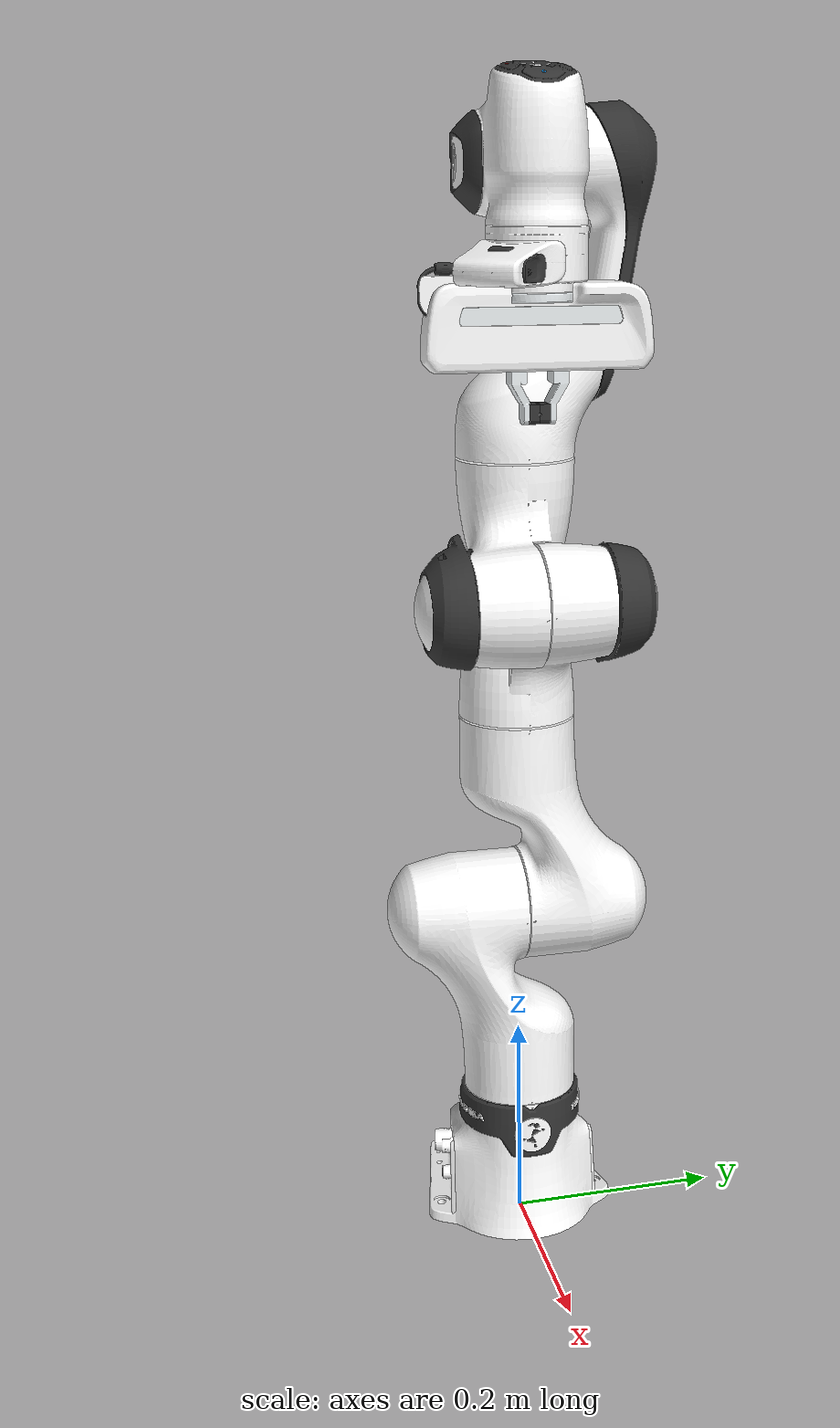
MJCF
<mujoco model="fr3">
  <compiler angle="radian" meshdir="../../../mujoco_menagerie/franka_fr3/assets" />
  <option integrator="implicitfast" />
  <default>
    <default class="fr3">
      <joint damping="0.21" armature="0.195" frictionloss="1.137" />
      <position inheritrange="1" />
      <default class="visual">
        <geom type="mesh" group="2" contype="0" conaffinity="0" />
      </default>
      <default class="collision">
        <geom type="mesh" group="3" mass="0" density="0" />
      </default>
      <site size="0.001" rgba="0.5 0.5 0.5 0.3" group="4" />
    </default>
    <default class="panda">
      <material specular="0.5" shininess="0.25" />
      <joint armature="0.1" damping="1" axis="0 0 1" range="-2.8973 2.8973" />
      <general dyntype="none" biastype="affine" ctrlrange="-2.8973 2.8973" forcerange="-87 87" />
      <default class="finger">
        <joint axis="0 1 0" type="slide" range="0 0.04" />
      </default>
      <default class="panda_visual">
        <geom type="mesh" contype="0" conaffinity="0" group="2" />
      </default>
      <default class="panda_collision">
        <geom type="mesh" group="3" />
        <default class="fingertip_pad_collision_1">
          <geom type="box" size="0.0085 0.004 0.0085" pos="0 0.0055 0.0445" />
        </default>
        <default class="fingertip_pad_collision_2">
          <geom type="box" size="0.003 0.002 0.003" pos="0.0055 0.002 0.05" />
        </default>
        <default class="fingertip_pad_collision_3">
          <geom type="box" size="0.003 0.002 0.003" pos="-0.0055 0.002 0.05" />
        </default>
        <default class="fingertip_pad_collision_4">
          <geom type="box" size="0.003 0.002 0.0035" pos="0.0055 0.002 0.0395" />
        </default>
        <default class="fingertip_pad_collision_5">
          <geom type="box" size="0.003 0.002 0.0035" pos="-0.0055 0.002 0.0395" />
        </default>
      </default>
    </default>
  </default>
  <asset>
    <material name="black" rgba=".2 .2 .2 1" />
    <material name="white" rgba="1 1 1 1" />
    <material name="red" rgba="1 0.072272 0.039546 1" />
    <material name="gray" rgba="0.863156 0.863156 0.863157 1" />
    <material name="button_green" rgba="0.102241 0.571125 0.102242 1" />
    <material name="button_red" rgba="0.520996 0.008023 0.013702 1" />
    <material name="button_blue" rgba="0.024157 0.445201 0.737911 1" />
    <mesh file="link0_0.obj" />
    <mesh file="link0_1.obj" />
    <mesh file="link0_2.obj" />
    <mesh file="link0_3.obj" />
    <mesh file="link0_4.obj" />
    <mesh file="link0_5.obj" />
    <mesh file="link0_6.obj" />
    <mesh file="link1.obj" />
    <mesh file="link2.obj" />
    <mesh file="link3_0.obj" />
    <mesh file="link3_1.obj" />
    <mesh file="link4_0.obj" />
    <mesh file="link4_1.obj" />
    <mesh file="link5_0.obj" />
    <mesh file="link5_1.obj" />
    <mesh file="link5_2.obj" />
    <mesh file="link6_0.obj" />
    <mesh file="link6_1.obj" />
    <mesh file="link6_2.obj" />
    <mesh file="link6_3.obj" />
    <mesh file="link6_4.obj" />
    <mesh file="link6_5.obj" />
    <mesh file="link6_6.obj" />
    <mesh file="link6_7.obj" />
    <mesh file="link7_0.obj" />
    <mesh file="link7_1.obj" />
    <mesh file="link7_2.obj" />
    <mesh file="link7_3.obj" />
    <mesh name="link0_coll" file="link0.stl" />
    <mesh name="link1_coll" file="link1.stl" />
    <mesh name="link2_coll" file="link2.stl" />
    <mesh name="link3_coll" file="link3.stl" />
    <mesh name="link4_coll" file="link4.stl" />
    <mesh name="link5_coll" file="link5.stl" />
    <mesh name="link6_coll" file="link6.stl" />
    <mesh name="link7_coll" file="link7.stl" />
    <mesh name="hand_c" file="../../franka_emika_panda/assets/hand.stl" />
    <mesh file="../../franka_emika_panda/assets/hand_0.obj" />
    <mesh file="../../franka_emika_panda/assets/hand_1.obj" />
    <mesh file="../../franka_emika_panda/assets/hand_2.obj" />
    <mesh file="../../franka_emika_panda/assets/hand_3.obj" />
    <mesh file="../../franka_emika_panda/assets/hand_4.obj" />
    <mesh file="../../franka_emika_panda/assets/finger_0.obj" />
    <mesh file="../../franka_emika_panda/assets/finger_1.obj" />
    <material class="panda" name="off_white" rgba="0.901961 0.921569 0.929412 1" />
  </asset>
  <worldbody>
    <body name="base" childclass="fr3">
      <body name="fr3_link0">
        <geom mesh="link0_0" material="black" class="visual" />
        <geom mesh="link0_1" material="white" class="visual" />
        <geom mesh="link0_2" material="white" class="visual" />
        <geom mesh="link0_3" material="white" class="visual" />
        <geom mesh="link0_4" material="white" class="visual" />
        <geom mesh="link0_5" material="red" class="visual" />
        <geom mesh="link0_6" material="black" class="visual" />
        <geom name="fr3_link0_collision" mesh="link0_coll" class="collision" />
        <body name="fr3_link1" pos="0 0 0.333">
          <inertial pos="4.128e-07 -0.0181251 -0.0386036" quat="0.998098 -0.0605364 0.00380499 0.0110109" mass="2.92747" diaginertia="0.0239286 0.0227246 0.00610634" />
          <joint name="fr3_joint1" axis="0 0 1" range="-2.7437 2.7437" actuatorfrcrange="-87 87" />
          <geom name="fr3_link1_collision" class="collision" mesh="link1_coll" />
          <geom material="white" mesh="link1" class="visual" />
          <body name="fr3_link2" quat="1 -1 0 0">
            <inertial pos="0.00318289 -0.0743222 0.00881461" quat="0.502599 0.584437 -0.465998 0.434366" mass="2.93554" diaginertia="0.0629567 0.0411924 0.0246371" />
            <joint name="fr3_joint2" axis="0 0 1" range="-1.7837 1.7837" actuatorfrcrange="-87 87" />
            <geom material="white" mesh="link2" class="visual" />
            <geom name="fr3_link2_collision" class="collision" mesh="link2_coll" />
            <body name="fr3_link3" pos="0 -0.316 0" quat="1 1 0 0">
              <inertial pos="0.0407016 -0.00482006 -0.0289731" quat="0.921025 -0.244161 0.155272 0.260745" mass="2.2449" diaginertia="0.0267409 0.0189869 0.0171587" />
              <joint name="fr3_joint3" axis="0 0 1" range="-2.9007 2.9007" actuatorfrcrange="-87 87" />
              <geom mesh="link3_0" material="white" class="visual" />
              <geom mesh="link3_1" material="black" class="visual" />
              <geom name="fr3_link3_collision" class="collision" mesh="link3_coll" />
              <body name="fr3_link4" pos="0.0825 0 0" quat="1 1 0 0">
                <inertial pos="-0.0459101 0.0630493 -0.00851879" quat="0.438018 0.803311 0.00937812 0.403414" mass="2.6156" diaginertia="0.05139 0.0372717 0.0160047" />
                <joint name="fr3_joint4" axis="0 0 1" range="-3.0421 -0.1518" actuatorfrcrange="-87 87" />
                <geom mesh="link4_0" material="white" class="visual" />
                <geom mesh="link4_1" material="black" class="visual" />
                <geom name="fr3_link4_collision" class="collision" mesh="link4_coll" />
                <body name="fr3_link5" pos="-0.0825 0.384 0" quat="1 -1 0 0">
                  <inertial pos="-0.00160396 0.0292536 -0.0972966" quat="0.919031 0.125604 0.0751531 -0.366003" mass="2.32712" diaginertia="0.0579335 0.0449144 0.0130634" />
                  <joint name="fr3_joint5" axis="0 0 1" range="-2.8065 2.8065" actuatorfrcrange="-12 12" armature="0.074" frictionloss="0.763" />
                  <geom mesh="link5_0" material="white" class="visual" />
                  <geom mesh="link5_1" material="white" class="visual" />
                  <geom mesh="link5_2" material="black" class="visual" />
                  <geom name="fr3_link5_collision" class="collision" mesh="link5_coll" />
                  <body name="fr3_link6" quat="1 1 0 0">
                    <inertial pos="0.0597131 -0.0410295 -0.0101693" quat="0.621301 0.552665 0.510011 0.220081" mass="1.81704" diaginertia="0.0175039 0.0161123 0.00193529" />
                    <joint name="fr3_joint6" axis="0 0 1" range="0.5445 4.5169" actuatorfrcrange="-12 12" armature="0.074" frictionloss="0.44" />
                    <geom mesh="link6_0" material="button_green" class="visual" />
                    <geom mesh="link6_1" material="white" class="visual" />
                    <geom mesh="link6_2" material="white" class="visual" />
                    <geom mesh="link6_3" material="gray" class="visual" />
                    <geom mesh="link6_4" material="button_red" class="visual" />
                    <geom mesh="link6_5" material="white" class="visual" />
                    <geom mesh="link6_6" material="black" class="visual" />
                    <geom mesh="link6_7" material="button_blue" class="visual" />
                    <geom name="fr3_link6_collision" class="collision" mesh="link6_coll" />
                    <body name="fr3_link7" pos="0.088 0 0" quat="1 1 0 0">
                      <inertial pos="0.00452258 0.00862619 -0.0161633" quat="0.727579 0.0978688 -0.24906 0.63168" mass="0.627143" diaginertia="0.000223836 0.000223642 5.64132e-07" />
                      <joint name="fr3_joint7" axis="0 0 1" range="-3.0159 3.0159" actuatorfrcrange="-12 12" armature="0.074" frictionloss="0.248" />
                      <geom mesh="link7_0" material="black" class="visual" />
                      <geom mesh="link7_1" material="white" class="visual" />
                      <geom mesh="link7_2" material="white" class="visual" />
                      <geom mesh="link7_3" material="black" class="visual" />
                      <geom name="fr3_link7_collision" class="collision" mesh="link7_coll" />
                      <site name="attachment_site" pos="0 0 0.107" />
                      <body name="hand" childclass="panda" quat="0 0 0 1" pos="0 0 0.107">
                        <inertial mass="0.73" pos="-0.01 0 0.03" diaginertia="0.001 0.0025 0.0017" />
                        <geom mesh="hand_0" material="off_white" class="panda_visual" />
                        <geom mesh="hand_1" material="black" class="panda_visual" />
                        <geom mesh="hand_2" material="black" class="panda_visual" />
                        <geom mesh="hand_3" material="white" class="panda_visual" />
                        <geom mesh="hand_4" material="off_white" class="panda_visual" />
                        <geom mesh="hand_c" class="panda_collision" />
                        <body name="left_finger" pos="0 0 0.0584">
                          <inertial mass="0.015" pos="0 0 0" diaginertia="2.375e-6 2.375e-6 7.5e-7" />
                          <joint name="finger_joint1" class="finger" />
                          <geom mesh="finger_0" material="off_white" class="panda_visual" />
                          <geom mesh="finger_1" material="black" class="panda_visual" />
                          <geom mesh="finger_0" class="panda_collision" />
                          <geom class="fingertip_pad_collision_1" />
                          <geom class="fingertip_pad_collision_2" />
                          <geom class="fingertip_pad_collision_3" />
                          <geom class="fingertip_pad_collision_4" />
                          <geom class="fingertip_pad_collision_5" />
                        </body>
                        <body name="right_finger" pos="0 0 0.0584" quat="0 0 0 1">
                          <inertial mass="0.015" pos="0 0 0" diaginertia="2.375e-6 2.375e-6 7.5e-7" />
                          <joint name="finger_joint2" class="finger" />
                          <geom mesh="finger_0" material="off_white" class="panda_visual" />
                          <geom mesh="finger_1" material="black" class="panda_visual" />
                          <geom mesh="finger_0" class="panda_collision" />
                          <geom class="fingertip_pad_collision_1" />
                          <geom class="fingertip_pad_collision_2" />
                          <geom class="fingertip_pad_collision_3" />
                          <geom class="fingertip_pad_collision_4" />
                          <geom class="fingertip_pad_collision_5" />
                        </body>
                      </body>
                    </body>
                  </body>
                </body>
              </body>
            </body>
          </body>
        </body>
      </body>
    </body>
  </worldbody>
  <actuator>
    <position class="fr3" name="fr3_joint1" joint="fr3_joint1" kp="4500" kv="450" />
    <position class="fr3" name="fr3_joint2" joint="fr3_joint2" kp="4500" kv="450" />
    <position class="fr3" name="fr3_joint3" joint="fr3_joint3" kp="3500" kv="350" />
    <position class="fr3" name="fr3_joint4" joint="fr3_joint4" kp="3500" kv="350" />
    <position class="fr3" name="fr3_joint5" joint="fr3_joint5" kp="2000" kv="200" />
    <position class="fr3" name="fr3_joint6" joint="fr3_joint6" kp="2000" kv="200" />
    <position class="fr3" name="fr3_joint7" joint="fr3_joint7" kp="2000" kv="200" />
    <general class="panda" name="actuator8" tendon="split" forcerange="-100 100" ctrlrange="0 255" gainprm="0.01568627451 0 0" biasprm="0 -100 -10" />
  </actuator>
  <contact>
    <exclude body1="fr3_link0" body2="fr3_link1" />
    <exclude body1="hand" body2="left_finger" />
    <exclude body1="hand" body2="right_finger" />
  </contact>
  <keyframe>
    <key name="home" qpos="0 0 0 -1.57079 0 1.57079 -0.7853" ctrl="0 0 0 -1.57079 0 1.57079 -0.7853" />
  </keyframe>
  <tendon>
    <fixed name="split">
      <joint joint="finger_joint1" coef="0.5" />
      <joint joint="finger_joint2" coef="0.5" />
    </fixed>
  </tendon>
  <equality>
    <joint joint1="finger_joint1" joint2="finger_joint2" solimp="0.95 0.99 0.001" solref="0.005 1" />
  </equality>
</mujoco>
